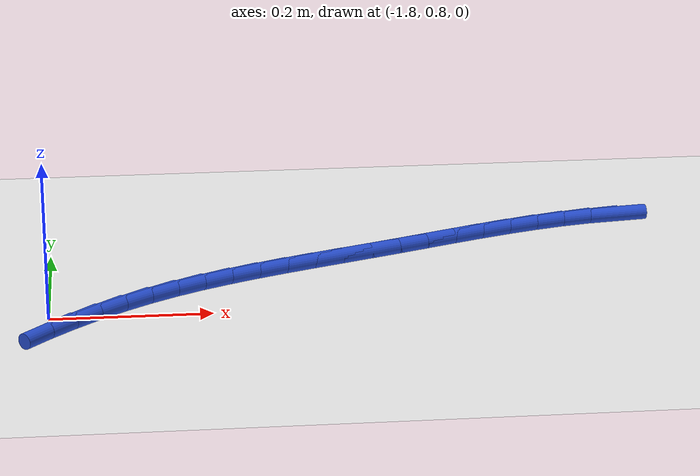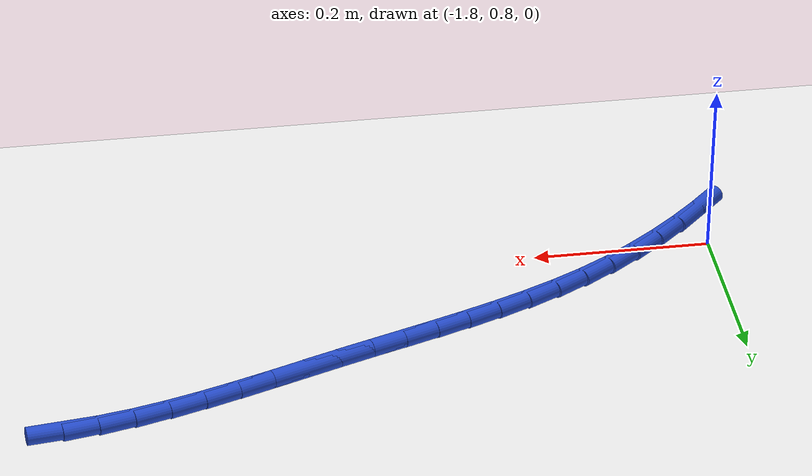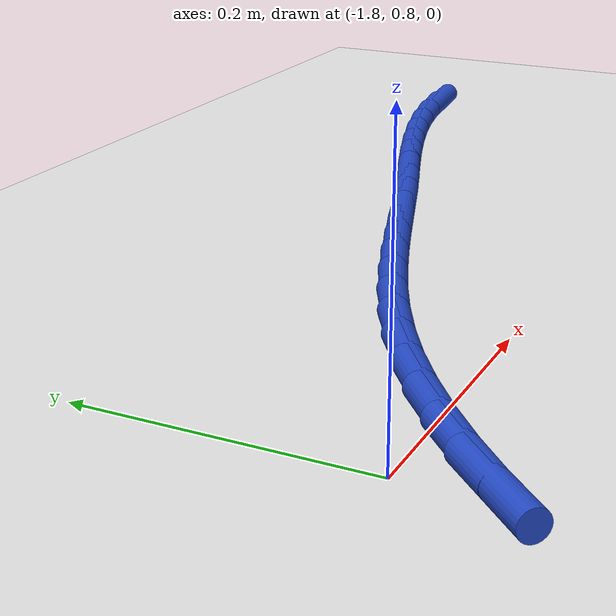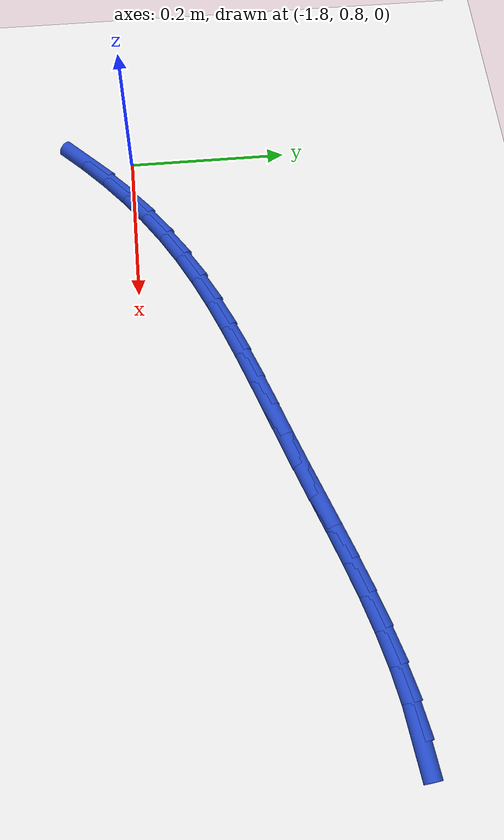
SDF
<sdf version="1.6">
 <world name="default">
  <model name="ground_plane">
   <static>1</static>
   <link name="link">
    <collision name="collision">
     <geometry><plane><normal>0 0 1</normal><size>100 100</size></plane></geometry>
     <surface><friction><ode><mu>100</mu><mu2>50</mu2></ode></friction></surface>
    </collision>
    <visual name="visual">
     <cast_shadows>0</cast_shadows>
     <geometry><plane><normal>0 0 1</normal><size>100 100</size></plane></geometry>
     <material>
      <script><uri>file://media/materials/scripts/gazebo.material</uri><name>Gazebo/WhiteGlow</name></script>
     </material>
    </visual>
   </link>
  </model>
  <model name="line">
   <link name="link_43">
    <pose>-1.0521806695792402 1.0577046748520433 0.01 0 1.57 0.12045471205789136</pose>
    <collision name="collision">
     <geometry><cylinder><radius>0.01</radius><length>0.08</length></cylinder></geometry>
    </collision>
    <visual name="visual">
     <material>
      <script><name>Gazebo/Blue</name><uri>file://media/materials/scripts/gazebo.material</uri></script>
     </material>
     <geometry><cylinder><radius>0.01</radius><length>0.08</length></cylinder></geometry>
    </visual>
   </link>
   <link name="link_44">
    <pose>-1.089632274921135 1.0531715068561736 0.01 0 1.57 0.18865319458546626</pose>
    <collision name="collision">
     <geometry><cylinder><radius>0.01</radius><length>0.08</length></cylinder></geometry>
    </collision>
    <visual name="visual">
     <material>
      <script><name>Gazebo/Blue</name><uri>file://media/materials/scripts/gazebo.material</uri></script>
     </material>
     <geometry><cylinder><radius>0.01</radius><length>0.08</length></cylinder></geometry>
    </visual>
   </link>
   <link name="link_45">
    <pose>-1.1272812516252952 1.0459834294868626 0.01 0 1.57 0.2437324239380083</pose>
    <collision name="collision">
     <geometry><cylinder><radius>0.01</radius><length>0.08</length></cylinder></geometry>
    </collision>
    <visual name="visual">
     <material>
      <script><name>Gazebo/Blue</name><uri>file://media/materials/scripts/gazebo.material</uri></script>
     </material>
     <geometry><cylinder><radius>0.01</radius><length>0.08</length></cylinder></geometry>
    </visual>
   </link>
   <link name="link_46">
    <pose>-1.1650801174059864 1.0365837480582631 0.01 0 1.57 0.2865503266886196</pose>
    <collision name="collision">
     <geometry><cylinder><radius>0.01</radius><length>0.08</length></cylinder></geometry>
    </collision>
    <visual name="visual">
     <material>
      <script><name>Gazebo/Blue</name><uri>file://media/materials/scripts/gazebo.material</uri></script>
     </material>
     <geometry><cylinder><radius>0.01</radius><length>0.08</length></cylinder></geometry>
    </visual>
   </link>
   <link name="link_47">
    <pose>-1.202981389977476 1.025415767884527 0.01 0 1.57 0.3179735040459937</pose>
    <collision name="collision">
     <geometry><cylinder><radius>0.01</radius><length>0.08</length></cylinder></geometry>
    </collision>
    <visual name="visual">
     <material>
      <script><name>Gazebo/Blue</name><uri>file://media/materials/scripts/gazebo.material</uri></script>
     </material>
     <geometry><cylinder><radius>0.01</radius><length>0.08</length></cylinder></geometry>
    </visual>
   </link>
   <link name="link_48">
    <pose>-1.2409375870540298 1.012922794279807 0.01 0 1.57 0.3387240236345106</pose>
    <collision name="collision">
     <geometry><cylinder><radius>0.01</radius><length>0.08</length></cylinder></geometry>
    </collision>
    <visual name="visual">
     <material>
      <script><name>Gazebo/Blue</name><uri>file://media/materials/scripts/gazebo.material</uri></script>
     </material>
     <geometry><cylinder><radius>0.01</radius><length>0.08</length></cylinder></geometry>
    </visual>
   </link>
   <link name="link_49">
    <pose>-1.278901226349915 0.9995481325582553 0.01 0 1.57 0.3492982826263346</pose>
    <collision name="collision">
     <geometry><cylinder><radius>0.01</radius><length>0.08</length></cylinder></geometry>
    </collision>
    <visual name="visual">
     <material>
      <script><name>Gazebo/Blue</name><uri>file://media/materials/scripts/gazebo.material</uri></script>
     </material>
     <geometry><cylinder><radius>0.01</radius><length>0.08</length></cylinder></geometry>
    </visual>
   </link>
   <link name="link_50">
    <pose>-1.316824825579399 0.9857350880340245 0.01 0 1.57 0.34992713526503894</pose>
    <collision name="collision">
     <geometry><cylinder><radius>0.01</radius><length>0.08</length></cylinder></geometry>
    </collision>
    <visual name="visual">
     <material>
      <script><name>Gazebo/Blue</name><uri>file://media/materials/scripts/gazebo.material</uri></script>
     </material>
     <geometry><cylinder><radius>0.01</radius><length>0.08</length></cylinder></geometry>
    </visual>
   </link>
   <link name="link_51">
    <pose>-1.3546609024567469 0.9719269660212666 0.01 0 1.57 0.3413518966211679</pose>
    <collision name="collision">
     <geometry><cylinder><radius>0.01</radius><length>0.08</length></cylinder></geometry>
    </collision>
    <visual name="visual">
     <material>
      <script><name>Gazebo/Blue</name><uri>file://media/materials/scripts/gazebo.material</uri></script>
     </material>
     <geometry><cylinder><radius>0.01</radius><length>0.08</length></cylinder></geometry>
    </visual>
   </link>
   <link name="link_52">
    <pose>-1.3923595646980726 0.9585341895688773 0.01 0 1.57 0.3337961311876104</pose>
    <collision name="collision">
     <geometry><cylinder><radius>0.01</radius><length>0.08</length></cylinder></geometry>
    </collision>
    <visual name="visual">
     <material>
      <script><name>Gazebo/Blue</name><uri>file://media/materials/scripts/gazebo.material</uri></script>
     </material>
     <geometry><cylinder><radius>0.01</radius><length>0.08</length></cylinder></geometry>
    </visual>
   </link>
   <link name="link_53">
    <pose>-1.4298394082886512 0.945537232395361 0.01 0 1.57 0.33469289615882825</pose>
    <collision name="collision">
     <geometry><cylinder><radius>0.01</radius><length>0.08</length></cylinder></geometry>
    </collision>
    <visual name="visual">
     <material>
      <script><name>Gazebo/Blue</name><uri>file://media/materials/scripts/gazebo.material</uri></script>
     </material>
     <geometry><cylinder><radius>0.01</radius><length>0.08</length></cylinder></geometry>
    </visual>
   </link>
   <link name="link_54">
    <pose>-1.4669969059159087 0.9326147156442594 0.01 0 1.57 0.3444100366077265</pose>
    <collision name="collision">
     <geometry><cylinder><radius>0.01</radius><length>0.08</length></cylinder></geometry>
    </collision>
    <visual name="visual">
     <material>
      <script><name>Gazebo/Blue</name><uri>file://media/materials/scripts/gazebo.material</uri></script>
     </material>
     <geometry><cylinder><radius>0.01</radius><length>0.08</length></cylinder></geometry>
    </visual>
   </link>
   <link name="link_55">
    <pose>-1.503728071916829 0.9194390066780236 0.01 0 1.57 0.3631521105262741</pose>
    <collision name="collision">
     <geometry><cylinder><radius>0.01</radius><length>0.08</length></cylinder></geometry>
    </collision>
    <visual name="visual">
     <material>
      <script><name>Gazebo/Blue</name><uri>file://media/materials/scripts/gazebo.material</uri></script>
     </material>
     <geometry><cylinder><radius>0.01</radius><length>0.08</length></cylinder></geometry>
    </visual>
   </link>
   <link name="link_56">
    <pose>-1.539928920628394 0.9056824728591054 0.01 0 1.57 0.39108638559215697</pose>
    <collision name="collision">
     <geometry><cylinder><radius>0.01</radius><length>0.08</length></cylinder></geometry>
    </collision>
    <visual name="visual">
     <material>
      <script><name>Gazebo/Blue</name><uri>file://media/materials/scripts/gazebo.material</uri></script>
     </material>
     <geometry><cylinder><radius>0.01</radius><length>0.08</length></cylinder></geometry>
    </visual>
   </link>
   <link name="link_57">
    <pose>-1.5754954663875878 0.8910174815499556 0.01 0 1.57 0.4282932569173917</pose>
    <collision name="collision">
     <geometry><cylinder><radius>0.01</radius><length>0.08</length></cylinder></geometry>
    </collision>
    <visual name="visual">
     <material>
      <script><name>Gazebo/Blue</name><uri>file://media/materials/scripts/gazebo.material</uri></script>
     </material>
     <geometry><cylinder><radius>0.01</radius><length>0.08</length></cylinder></geometry>
    </visual>
   </link>
   <link name="link_58">
    <pose>-1.6103237235313934 0.8751164001130258 0.01 0 1.57 0.4746918838837033</pose>
    <collision name="collision">
     <geometry><cylinder><radius>0.01</radius><length>0.08</length></cylinder></geometry>
    </collision>
    <visual name="visual">
     <material>
      <script><name>Gazebo/Blue</name><uri>file://media/materials/scripts/gazebo.material</uri></script>
     </material>
     <geometry><cylinder><radius>0.01</radius><length>0.08</length></cylinder></geometry>
    </visual>
   </link>
   <link name="link_59">
    <pose>-1.6443097063967929 0.857651595910767 0.01 0 1.57 0.5295334350832208</pose>
    <collision name="collision">
     <geometry><cylinder><radius>0.01</radius><length>0.08</length></cylinder></geometry>
    </collision>
    <visual name="visual">
     <material>
      <script><name>Gazebo/Blue</name><uri>file://media/materials/scripts/gazebo.material</uri></script>
     </material>
     <geometry><cylinder><radius>0.01</radius><length>0.08</length></cylinder></geometry>
    </visual>
   </link>
   <link name="link_60">
    <pose>-1.6773519302405382 0.838312297921994 0.01 0 1.57 0.5864700486711794</pose>
    <collision name="collision">
     <geometry><cylinder><radius>0.01</radius><length>0.08</length></cylinder></geometry>
    </collision>
    <visual name="visual">
     <material>
      <script><name>Gazebo/Blue</name><uri>file://media/materials/scripts/gazebo.material</uri></script>
     </material>
     <geometry><cylinder><radius>0.01</radius><length>0.08</length></cylinder></geometry>
    </visual>
   </link>
   <link name="link_61">
    <pose>-1.709384554360176 0.8170280531673858 0.01 0 1.57 0.6410754966665696</pose>
    <collision name="collision">
     <geometry><cylinder><radius>0.01</radius><length>0.08</length></cylinder></geometry>
    </collision>
    <visual name="visual">
     <material>
      <script><name>Gazebo/Blue</name><uri>file://media/materials/scripts/gazebo.material</uri></script>
     </material>
     <geometry><cylinder><radius>0.01</radius><length>0.08</length></cylinder></geometry>
    </visual>
   </link>
   <link name="link_62">
    <pose>-1.7403682954845774 0.7939074632795774 0.01 0 1.57 0.693365747215571</pose>
    <collision name="collision">
     <geometry><cylinder><radius>0.01</radius><length>0.08</length></cylinder></geometry>
    </collision>
    <visual name="visual">
     <material>
      <script><name>Gazebo/Blue</name><uri>file://media/materials/scripts/gazebo.material</uri></script>
     </material>
     <geometry><cylinder><radius>0.01</radius><length>0.08</length></cylinder></geometry>
    </visual>
   </link>
   <link name="link_63">
    <pose>-1.7702645044642762 0.7690634052447409 0.01 0 1.57 0.7434961846682222</pose>
    <collision name="collision">
     <geometry><cylinder><radius>0.01</radius><length>0.08</length></cylinder></geometry>
    </collision>
    <visual name="visual">
     <material>
      <script><name>Gazebo/Blue</name><uri>file://media/materials/scripts/gazebo.material</uri></script>
     </material>
     <geometry><cylinder><radius>0.01</radius><length>0.08</length></cylinder></geometry>
    </visual>
   </link>
   <link name="link_64">
    <pose>-1.7990345321498051 0.74260875604905 0.01 0 1.57 0.7916468468557558</pose>
    <collision name="collision">
     <geometry><cylinder><radius>0.01</radius><length>0.08</length></cylinder></geometry>
    </collision>
    <visual name="visual">
     <material>
      <script><name>Gazebo/Blue</name><uri>file://media/materials/scripts/gazebo.material</uri></script>
     </material>
     <geometry><cylinder><radius>0.01</radius><length>0.08</length></cylinder></geometry>
    </visual>
   </link>
  </model>
 </world>
</sdf>
